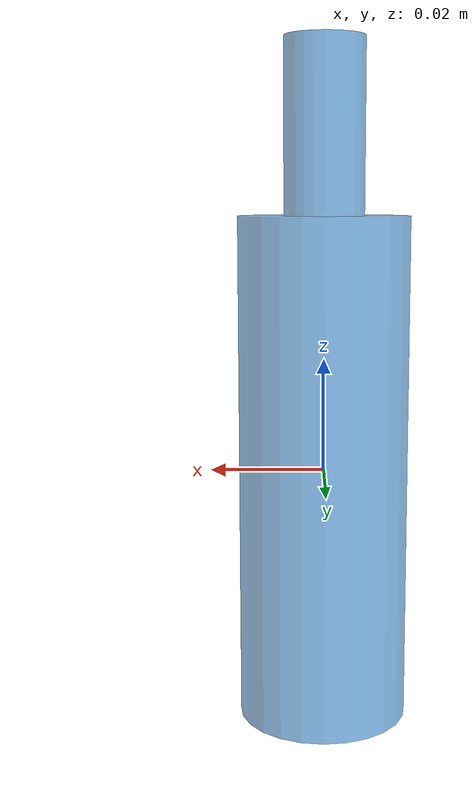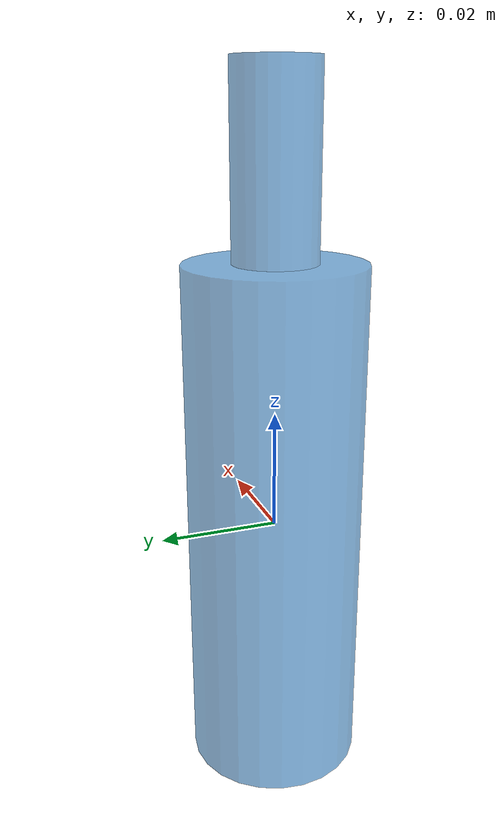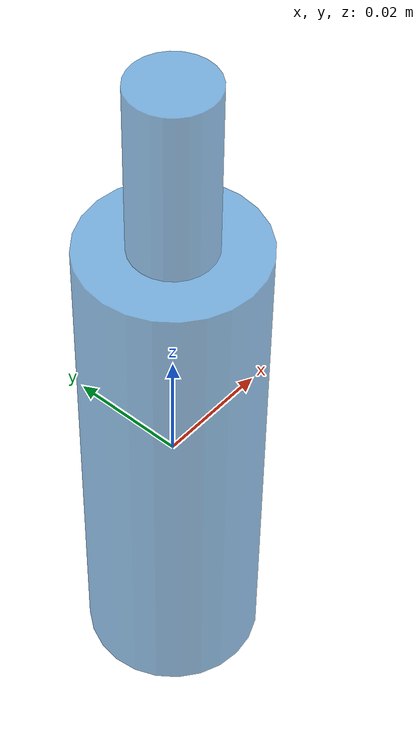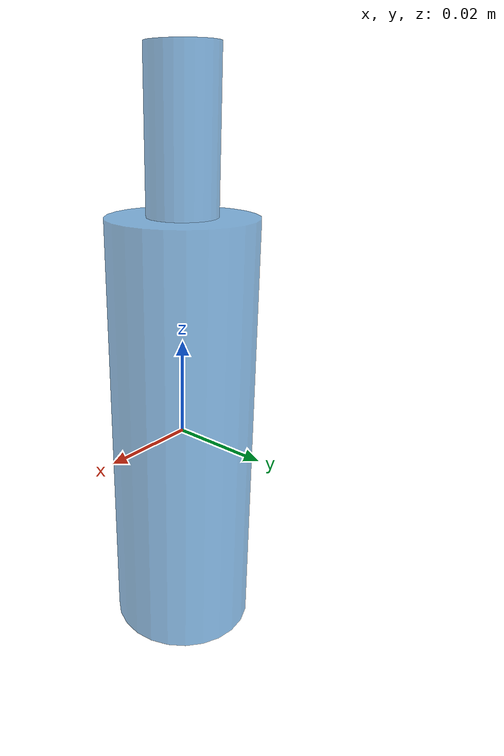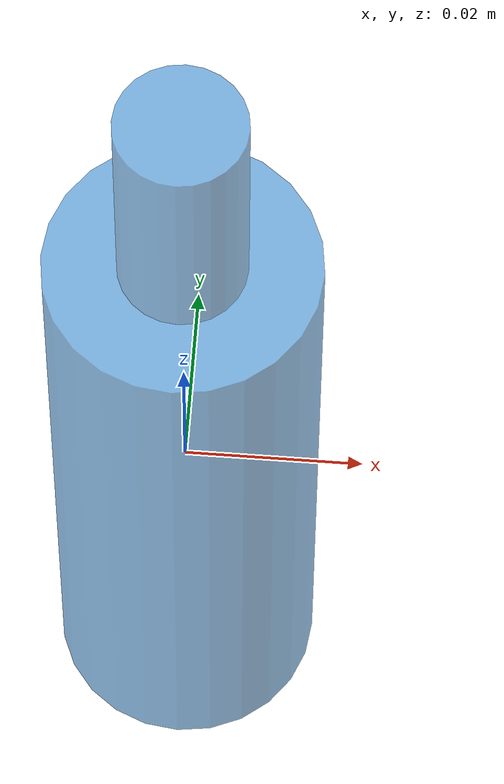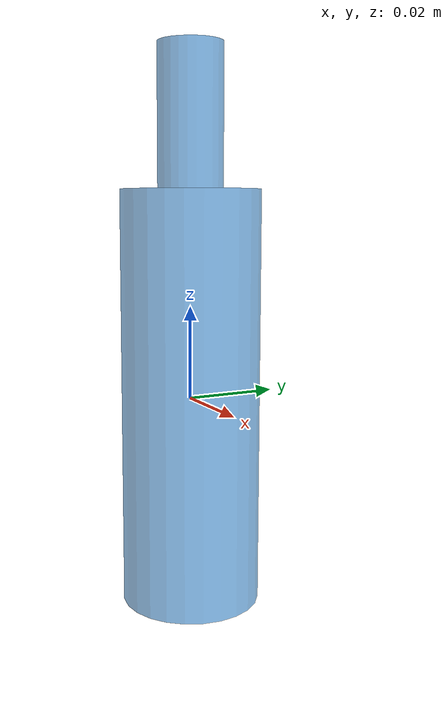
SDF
<?xml version="1.0"?>
<sdf version="1.10">
  <model name="trash_bottle">
    <link name="link">
      <inertial>
        <mass>0.025</mass>
        <inertia><ixx>2.0e-5</ixx><iyy>2.0e-5</iyy><izz>2.8e-6</izz>
          <ixy>0</ixy><ixz>0</ixz><iyz>0</iyz></inertia>
      </inertial>
      <collision name="body_col">
        <geometry><cylinder><radius>0.015</radius><length>0.09</length></cylinder></geometry>
      </collision>
      <visual name="body_vis">
        <geometry><cylinder><radius>0.015</radius><length>0.09</length></cylinder></geometry>
        <material>
          <ambient>0.10 0.30 0.55 0.6</ambient>
          <diffuse>0.15 0.50 0.80 0.6</diffuse>
          <specular>0.3 0.3 0.3 1</specular>
          <transparency>0.3</transparency>
        </material>
      </visual>
      <collision name="neck_col">
        <pose>0 0 0.06 0 0 0</pose>
        <geometry><cylinder><radius>0.007</radius><length>0.03</length></cylinder></geometry>
      </collision>
      <visual name="neck_vis">
        <pose>0 0 0.06 0 0 0</pose>
        <geometry><cylinder><radius>0.007</radius><length>0.03</length></cylinder></geometry>
        <material>
          <ambient>0.10 0.30 0.55 0.6</ambient>
          <diffuse>0.15 0.50 0.80 0.6</diffuse>
          <transparency>0.3</transparency>
        </material>
      </visual>
    </link>
  </model>
</sdf>
